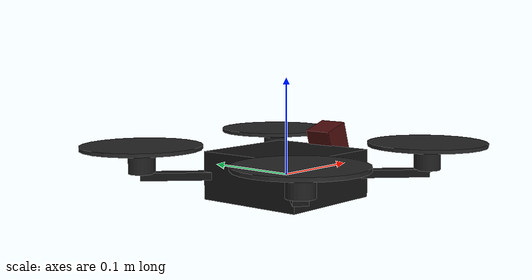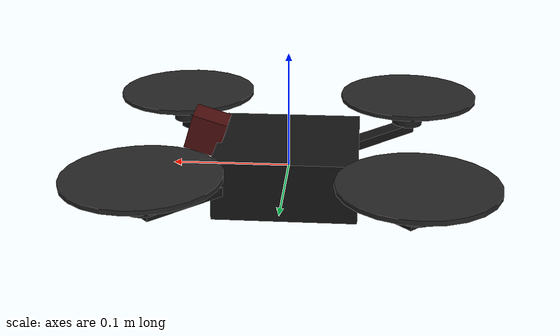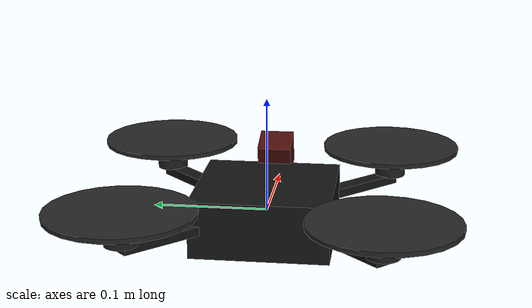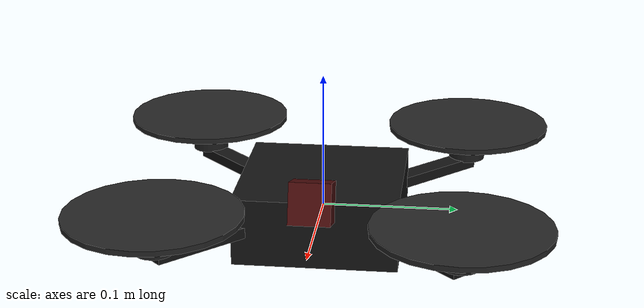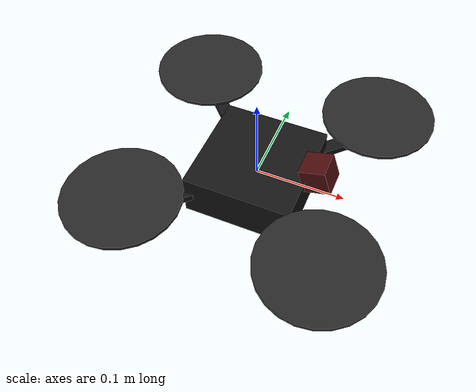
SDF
<?xml version="1.0" encoding="UTF-8"?>
<sdf version="1.9">
  <model name="target_drone">
    <static>false</static>
    <link name="body">
      <gravity>false</gravity>
      <inertial>
        <mass>0.6</mass>
        <inertia>
          <ixx>0.005</ixx><iyy>0.005</iyy><izz>0.009</izz>
          <ixy>0</ixy><ixz>0</ixz><iyz>0</iyz>
        </inertia>
      </inertial>
      <visual name="frame">
        <geometry><box><size>0.12 0.12 0.05</size></box></geometry>
        <material>
          <ambient>0.08 0.08 0.08 1</ambient>
          <diffuse>0.08 0.08 0.08 1</diffuse>
        </material>
        <plugin filename="gz-sim-thermal-system" name="gz::sim::systems::Thermal">
          <temperature>305.0</temperature>
        </plugin>
      </visual>
      <!-- motor bells: the real hotspots (~42 C in no-load hover) -->
      <visual name="motor_fr">
        <pose>0.105 -0.105 0.012 0 0 0</pose>
        <geometry><cylinder><radius>0.014</radius><length>0.018</length></cylinder></geometry>
        <material><ambient>0.12 0.12 0.12 1</ambient><diffuse>0.12 0.12 0.12 1</diffuse></material>
        <plugin filename="gz-sim-thermal-system" name="gz::sim::systems::Thermal">
          <temperature>315.0</temperature>
        </plugin>
      </visual>
      <visual name="motor_fl">
        <pose>0.105 0.105 0.012 0 0 0</pose>
        <geometry><cylinder><radius>0.014</radius><length>0.018</length></cylinder></geometry>
        <material><ambient>0.12 0.12 0.12 1</ambient><diffuse>0.12 0.12 0.12 1</diffuse></material>
        <plugin filename="gz-sim-thermal-system" name="gz::sim::systems::Thermal">
          <temperature>315.0</temperature>
        </plugin>
      </visual>
      <visual name="motor_br">
        <pose>-0.105 -0.105 0.012 0 0 0</pose>
        <geometry><cylinder><radius>0.014</radius><length>0.018</length></cylinder></geometry>
        <material><ambient>0.12 0.12 0.12 1</ambient><diffuse>0.12 0.12 0.12 1</diffuse></material>
        <plugin filename="gz-sim-thermal-system" name="gz::sim::systems::Thermal">
          <temperature>315.0</temperature>
        </plugin>
      </visual>
      <visual name="motor_bl">
        <pose>-0.105 0.105 0.012 0 0 0</pose>
        <geometry><cylinder><radius>0.014</radius><length>0.018</length></cylinder></geometry>
        <material><ambient>0.12 0.12 0.12 1</ambient><diffuse>0.12 0.12 0.12 1</diffuse></material>
        <plugin filename="gz-sim-thermal-system" name="gz::sim::systems::Thermal">
          <temperature>315.0</temperature>
        </plugin>
      </visual>
      <!-- arms (X frame) -->
      <visual name="arm_fr">
        <pose>0.06 -0.06 0 0 0 -0.785</pose>
        <geometry><box><size>0.13 0.015 0.008</size></box></geometry>
        <material><ambient>0.08 0.08 0.08 1</ambient><diffuse>0.08 0.08 0.08 1</diffuse></material>
      </visual>
      <visual name="arm_fl">
        <pose>0.06 0.06 0 0 0 0.785</pose>
        <geometry><box><size>0.13 0.015 0.008</size></box></geometry>
        <material><ambient>0.08 0.08 0.08 1</ambient><diffuse>0.08 0.08 0.08 1</diffuse></material>
      </visual>
      <visual name="arm_br">
        <pose>-0.06 -0.06 0 0 0 0.785</pose>
        <geometry><box><size>0.13 0.015 0.008</size></box></geometry>
        <material><ambient>0.08 0.08 0.08 1</ambient><diffuse>0.08 0.08 0.08 1</diffuse></material>
      </visual>
      <visual name="arm_bl">
        <pose>-0.06 0.06 0 0 0 -0.785</pose>
        <geometry><box><size>0.13 0.015 0.008</size></box></geometry>
        <material><ambient>0.08 0.08 0.08 1</ambient><diffuse>0.08 0.08 0.08 1</diffuse></material>
      </visual>
      <!-- prop discs (5 inch ≈ 0.063 m radius) -->
      <visual name="prop_fr">
        <pose>0.105 -0.105 0.03 0 0 0</pose>
        <geometry><cylinder><radius>0.063</radius><length>0.004</length></cylinder></geometry>
        <material><ambient>0.15 0.15 0.15 0.9</ambient><diffuse>0.15 0.15 0.15 0.9</diffuse></material>
      </visual>
      <visual name="prop_fl">
        <pose>0.105 0.105 0.03 0 0 0</pose>
        <geometry><cylinder><radius>0.063</radius><length>0.004</length></cylinder></geometry>
        <material><ambient>0.15 0.15 0.15 0.9</ambient><diffuse>0.15 0.15 0.15 0.9</diffuse></material>
      </visual>
      <visual name="prop_br">
        <pose>-0.105 -0.105 0.03 0 0 0</pose>
        <geometry><cylinder><radius>0.063</radius><length>0.004</length></cylinder></geometry>
        <material><ambient>0.15 0.15 0.15 0.9</ambient><diffuse>0.15 0.15 0.15 0.9</diffuse></material>
      </visual>
      <visual name="prop_bl">
        <pose>-0.105 0.105 0.03 0 0 0</pose>
        <geometry><cylinder><radius>0.063</radius><length>0.004</length></cylinder></geometry>
        <material><ambient>0.15 0.15 0.15 0.9</ambient><diffuse>0.15 0.15 0.15 0.9</diffuse></material>
      </visual>
      <!-- camera pod, gives it the classic FPV silhouette -->
      <visual name="fpv_cam">
        <pose>0.07 0 0.03 0 -0.3 0</pose>
        <geometry><box><size>0.03 0.03 0.03</size></box></geometry>
        <material><ambient>0.3 0.05 0.05 1</ambient><diffuse>0.3 0.05 0.05 1</diffuse></material>
      </visual>
    </link>
  </model>
</sdf>
